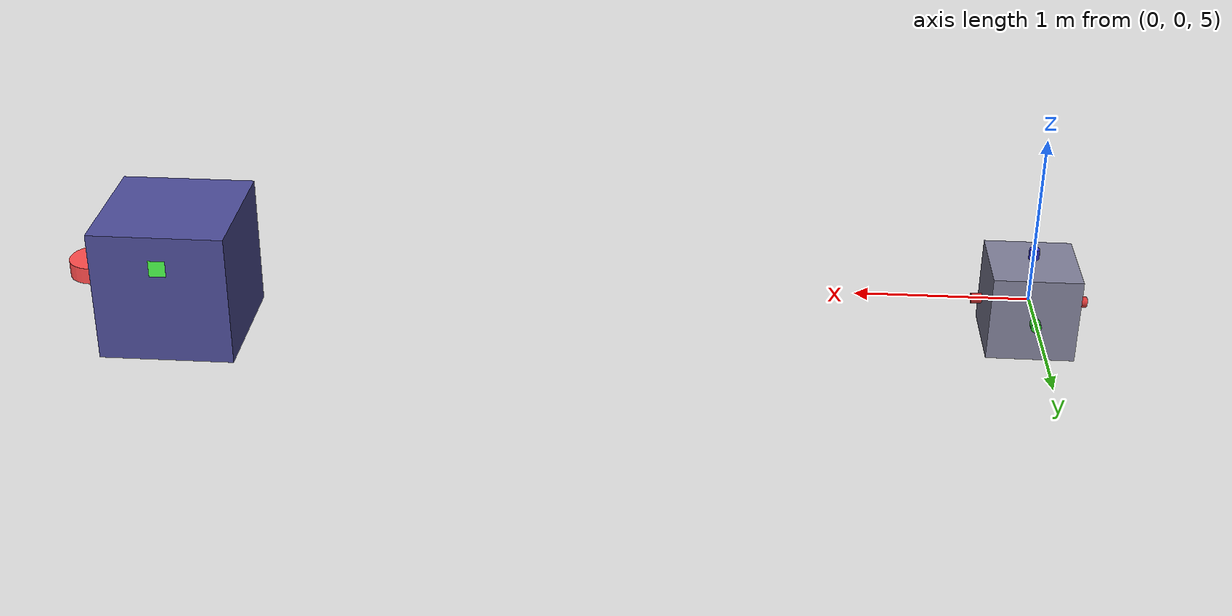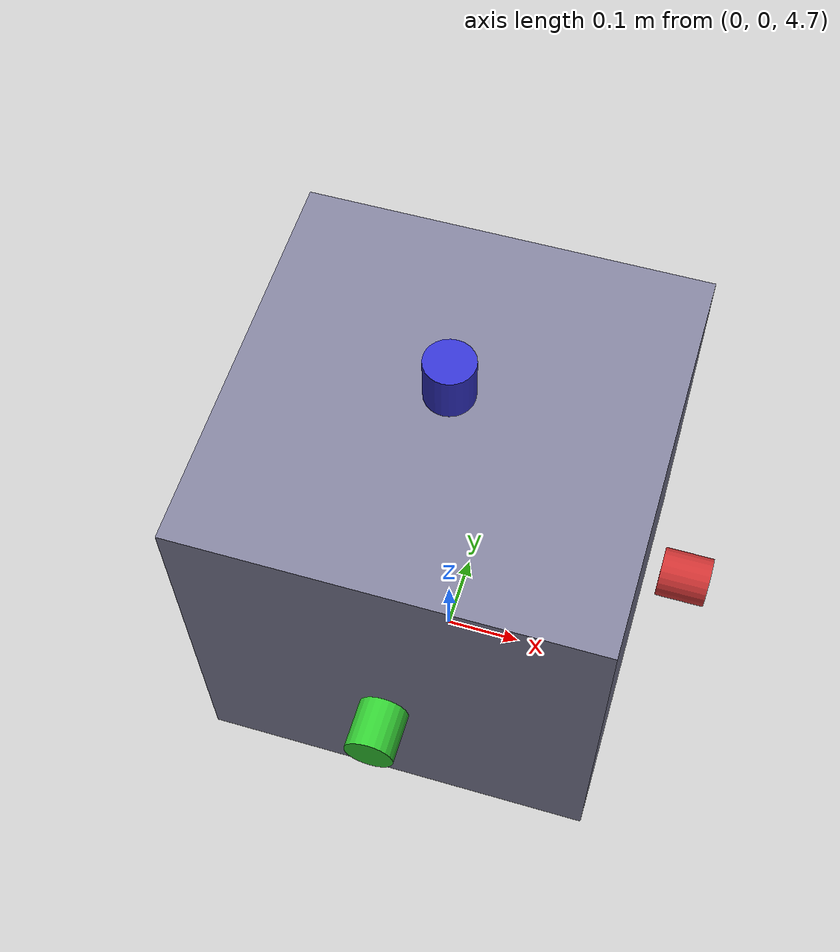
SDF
<?xml version="1.0"?>
<sdf version="1.9">
  <world name="leo_world">
    <!-- Zero gravity for space simulation -->
  <gravity>0 0 0</gravity>

    <atmosphere type="adiabatic"/>
    <wind>
      <linear_velocity>0 0 0</linear_velocity>
    </wind>

    <physics name="default_physics" type="ode">
      <max_step_size>0.001</max_step_size>
      <real_time_factor>1.0</real_time_factor>
      <real_time_update_rate>1000</real_time_update_rate>
      <ode>
        <solver>
          <type>quick</type>
          <iters>50</iters>
          <sor>1.3</sor>
        </solver>
        <constraints>
          <cfm>0.0</cfm>
          <erp>0.2</erp>
          <contact_max_correcting_vel>100.0</contact_max_correcting_vel>
          <contact_surface_layer>0.001</contact_surface_layer>
        </constraints>
      </ode>
    </physics>

    <!-- Dark space-like background -->
    <scene>
      <ambient>0.2 0.2 0.22 1</ambient>
      <background>0.0 0.0 0.0 1</background>
      <shadows>false</shadows>
    </scene>

    <!-- Built-in directional light for visibility (no external model needed) -->
    <light name="key_light" type="directional">
      <cast_shadows>false</cast_shadows>
      <pose>0 0 5 0.5 0 0</pose>
  <diffuse>0.9 0.9 0.95 1</diffuse>
      <specular>0.1 0.1 0.1 1</specular>
      <attenuation>
        <range>100</range>
        <constant>1.0</constant>
        <linear>0.0</linear>
        <quadratic>0.0</quadratic>
      </attenuation>
      <direction>-0.3 -0.2 -1</direction>
    </light>

    <light name="fill_light" type="directional">
      <cast_shadows>false</cast_shadows>
      <pose>0 0 3 0 0 0</pose>
      <diffuse>0.4 0.4 0.45 1</diffuse>
      <specular>0.05 0.05 0.05 1</specular>
      <attenuation>
        <range>100</range>
        <constant>1.0</constant>
        <linear>0.0</linear>
        <quadratic>0.0</quadratic>
      </attenuation>
      <direction>0.3 0.2 -0.6</direction>
    </light>

    <light name="point_glow" type="point">
      <cast_shadows>false</cast_shadows>
      <pose>0 0 1.2 0 0 0</pose>
      <diffuse>0.3 0.3 0.35 1</diffuse>
      <specular>0.0 0.0 0.0 0</specular>
      <attenuation>
        <range>5</range>
        <constant>0.5</constant>
        <linear>0.1</linear>
        <quadratic>0.02</quadratic>
      </attenuation>
    </light>

    <!-- Add the main satellite (AstroSat) at visible altitude -->
    <include>
      <uri>file:///Users/dganjali/GitHub/JADE-SpaceApps/gazebo/models/satellite</uri>
      <pose>0 0 5 0 0 0</pose> <!-- 5 meters altitude for visibility -->
    </include>

    <!-- Add the target docking station (AstroDock) at slightly different position -->
    <include>
      <uri>file:///Users/dganjali/GitHub/JADE-SpaceApps/gazebo/models/astro_dock</uri>
      <pose>5 0 5 0 0 0</pose> <!-- 5 meters separation -->
    </include>

  </world>
</sdf>

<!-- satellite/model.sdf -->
<sdf version="1.9">
  <model name="training_satellite">
    <pose>0 0 0.5 0 0 0</pose>

  <link name="base_link">
      <inertial>
        <pose>0 0 0 0 0 0</pose>
        <mass>10.0</mass>
        <inertia>
          <ixx>0.25</ixx>
          <ixy>0</ixy>
          <ixz>0</ixz>
          <iyy>0.25</iyy>
          <iyz>0</iyz>
          <izz>0.25</izz>
        </inertia>
      </inertial>

      <collision name="collision">
        <geometry>
          <box>
            <size>0.5 0.5 0.5</size>
          </box>
        </geometry>
        <surface>
          <contact>
            <ode/>
          </contact>
        </surface>
      </collision>

      <visual name="visual">
        <geometry>
          <box>
            <size>0.5 0.5 0.5</size>
          </box>
        </geometry>
        <material>
          <ambient>0.2 0.2 0.25 1</ambient>
          <diffuse>0.5 0.5 0.6 1</diffuse>
          <specular>0.1 0.1 0.1 1</specular>
          <emissive>0.05 0.05 0.06 1</emissive>
        </material>
      </visual>

      <!-- IMU sensor on the body -->
      <sensor name="imu" type="imu">
        <always_on>true</always_on>
        <update_rate>100</update_rate>
        <topic>imu</topic>
        <imu>
          <angular_velocity>
            <x>
              <noise type="gaussian">
                <mean>0</mean>
                <stddev>0.0005</stddev>
              </noise>
            </x>
            <y>
              <noise type="gaussian">
                <mean>0</mean>
                <stddev>0.0005</stddev>
              </noise>
            </y>
            <z>
              <noise type="gaussian">
                <mean>0</mean>
                <stddev>0.0005</stddev>
              </noise>
            </z>
          </angular_velocity>
          <linear_acceleration>
            <x>
              <noise type="gaussian">
                <mean>0</mean>
                <stddev>0.0005</stddev>
              </noise>
            </x>
            <y>
              <noise type="gaussian">
                <mean>0</mean>
                <stddev>0.0005</stddev>
              </noise>
            </y>
            <z>
              <noise type="gaussian">
                <mean>0</mean>
                <stddev>0.0005</stddev>
              </noise>
            </z>
          </linear_acceleration>
        </imu>
      </sensor>
    </link>

    <!-- Thruster frames: 6 axis-aligned (+X, -X, +Y, -Y, +Z, -Z)
         Convention: thrust direction is the +Z axis of each thruster link. -->
    <link name="thruster_px">
      <inertial>
        <mass>0.01</mass>
        <inertia>
          <ixx>1e-5</ixx><ixy>0</ixy><ixz>0</ixz>
          <iyy>1e-5</iyy><iyz>0</iyz>
          <izz>1e-5</izz>
        </inertia>
      </inertial>
      <!-- Rotate so +Z aligns with +X (pitch -90 deg) -->
      <pose>0.3 0 0 0 -1.5708 0</pose>
      <visual name="v">
        <geometry><cylinder><radius>0.03</radius><length>0.06</length></cylinder></geometry>
        <material>
          <diffuse>0.8 0.2 0.2 1</diffuse>
          <emissive>0.05 0.01 0.01 1</emissive>
        </material>
      </visual>
    </link>
    <joint name="thruster_px_joint" type="fixed">
      <parent>base_link</parent>
      <child>thruster_px</child>
    </joint>

    <link name="thruster_nx">
      <inertial>
        <mass>0.01</mass>
        <inertia>
          <ixx>1e-5</ixx><ixy>0</ixy><ixz>0</ixz>
          <iyy>1e-5</iyy><iyz>0</iyz>
          <izz>1e-5</izz>
        </inertia>
      </inertial>
      <!-- Rotate so +Z aligns with -X (pitch +90 deg) -->
      <pose>-0.3 0 0 0 1.5708 0</pose>
      <visual name="v">
        <geometry><cylinder><radius>0.03</radius><length>0.06</length></cylinder></geometry>
        <material>
          <diffuse>0.8 0.2 0.2 1</diffuse>
          <emissive>0.05 0.01 0.01 1</emissive>
        </material>
      </visual>
    </link>
    <joint name="thruster_nx_joint" type="fixed">
      <parent>base_link</parent>
      <child>thruster_nx</child>
    </joint>

    <link name="thruster_py">
      <inertial>
        <mass>0.01</mass>
        <inertia>
          <ixx>1e-5</ixx><ixy>0</ixy><ixz>0</ixz>
          <iyy>1e-5</iyy><iyz>0</iyz>
          <izz>1e-5</izz>
        </inertia>
      </inertial>
      <!-- Rotate so +Z aligns with +Y (roll +90 deg) -->
      <pose>0 0.3 0 1.5708 0 0</pose>
      <visual name="v">
        <geometry><cylinder><radius>0.03</radius><length>0.06</length></cylinder></geometry>
        <material>
          <diffuse>0.2 0.8 0.2 1</diffuse>
          <emissive>0.01 0.05 0.01 1</emissive>
        </material>
      </visual>
    </link>
    <joint name="thruster_py_joint" type="fixed">
      <parent>base_link</parent>
      <child>thruster_py</child>
    </joint>

    <link name="thruster_ny">
      <inertial>
        <mass>0.01</mass>
        <inertia>
          <ixx>1e-5</ixx><ixy>0</ixy><ixz>0</ixz>
          <iyy>1e-5</iyy><iyz>0</iyz>
          <izz>1e-5</izz>
        </inertia>
      </inertial>
      <!-- Rotate so +Z aligns with -Y (roll -90 deg) -->
      <pose>0 -0.3 0 -1.5708 0 0</pose>
      <visual name="v">
        <geometry><cylinder><radius>0.03</radius><length>0.06</length></cylinder></geometry>
        <material>
          <diffuse>0.2 0.8 0.2 1</diffuse>
          <emissive>0.01 0.05 0.01 1</emissive>
        </material>
      </visual>
    </link>
    <joint name="thruster_ny_joint" type="fixed">
      <parent>base_link</parent>
      <child>thruster_ny</child>
    </joint>

    <link name="thruster_pz">
      <inertial>
        <mass>0.01</mass>
        <inertia>
          <ixx>1e-5</ixx><ixy>0</ixy><ixz>0</ixz>
          <iyy>1e-5</iyy><iyz>0</iyz>
          <izz>1e-5</izz>
        </inertia>
      </inertial>
      <!-- +Z already aligns with +Z (no rotation) -->
      <pose>0 0 0.3 0 0 0</pose>
      <visual name="v">
        <geometry><cylinder><radius>0.03</radius><length>0.06</length></cylinder></geometry>
        <material>
          <diffuse>0.2 0.2 0.8 1</diffuse>
          <emissive>0.01 0.01 0.05 1</emissive>
        </material>
      </visual>
    </link>
    <joint name="thruster_pz_joint" type="fixed">
      <parent>base_link</parent>
      <child>thruster_pz</child>
    </joint>

    <link name="thruster_nz">
      <inertial>
        <mass>0.01</mass>
        <inertia>
          <ixx>1e-5</ixx><ixy>0</ixy><ixz>0</ixz>
          <iyy>1e-5</iyy><iyz>0</iyz>
          <izz>1e-5</izz>
        </inertia>
      </inertial>
      <!-- Rotate so +Z aligns with -Z (roll 180 deg) -->
      <pose>0 0 -0.3 3.14159 0 0</pose>
      <visual name="v">
        <geometry><cylinder><radius>0.03</radius><length>0.06</length></cylinder></geometry>
        <material>
          <diffuse>0.2 0.2 0.8 1</diffuse>
          <emissive>0.01 0.01 0.05 1</emissive>
        </material>
      </visual>
    </link>
    <joint name="thruster_nz_joint" type="fixed">
      <parent>base_link</parent>
      <child>thruster_nz</child>
    </joint>

    <allow_auto_disable>false</allow_auto_disable>
    <static>false</static>

  </model>
</sdf>

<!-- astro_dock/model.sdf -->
<sdf version="1.9">
  <model name="astro_dock">
    <pose>5 0 0 0 0 0</pose> <!-- Positioned 5m away from origin -->

    <!-- Main dock body -->
    <link name="dock_body">
      <inertial>
        <pose>0 0 0 0 0 0</pose>
        <mass>15.0</mass>
        <inertia>
          <ixx>0.5</ixx>
          <ixy>0</ixy>
          <ixz>0</ixz>
          <iyy>0.5</iyy>
          <iyz>0</iyz>
          <izz>0.5</izz>
        </inertia>
      </inertial>

      <collision name="collision">
        <geometry>
          <box>
            <size>0.8 0.8 0.8</size>
          </box>
        </geometry>
        <surface>
          <contact>
            <ode/>
          </contact>
        </surface>
      </collision>

      <visual name="visual">
        <geometry>
          <box>
            <size>0.8 0.8 0.8</size>
          </box>
        </geometry>
        <material>
          <ambient>0.1 0.1 0.2 1</ambient>
          <diffuse>0.3 0.3 0.6 1</diffuse>
          <specular>0.1 0.1 0.1 1</specular>
          <emissive>0.05 0.05 0.1 1</emissive>
        </material>
      </visual>
    </link>

    <!-- Docking port - visual target for the main satellite -->
    <link name="docking_port">
      <inertial>
        <mass>0.1</mass>
        <inertia>
          <ixx>0.001</ixx><ixy>0</ixy><ixz>0</ixz>
          <iyy>0.001</iyy><iyz>0</iyz>
          <izz>0.001</izz>
        </inertia>
      </inertial>
      <pose>0.5 0 0 0 0 0</pose> <!-- Extended from dock body -->
      <visual name="port_visual">
        <geometry>
          <cylinder>
            <radius>0.15</radius>
            <length>0.1</length>
          </cylinder>
        </geometry>
        <material>
          <ambient>0.8 0.2 0.2 1</ambient>
          <diffuse>1.0 0.3 0.3 1</diffuse>
          <specular>0.1 0.1 0.1 1</specular>
          <emissive>0.1 0.02 0.02 1</emissive>
        </material>
      </visual>
    </link>
    <joint name="docking_port_joint" type="fixed">
      <parent>dock_body</parent>
      <child>docking_port</child>
    </joint>

    <!-- Battery slot 1 -->
    <link name="battery_slot_1">
      <inertial>
        <mass>0.5</mass>
        <inertia>
          <ixx>0.01</ixx><ixy>0</ixy><ixz>0</ixz>
          <iyy>0.01</iyy><iyz>0</iyz>
          <izz>0.01</izz>
        </inertia>
      </inertial>
      <pose>0 0.3 0.2 0 0 0</pose>
      <visual name="battery_1_visual">
        <geometry>
          <box>
            <size>0.1 0.2 0.1</size>
          </box>
        </geometry>
        <material>
          <ambient>0.2 0.8 0.2 1</ambient>
          <diffuse>0.3 1.0 0.3 1</diffuse>
          <specular>0.1 0.1 0.1 1</specular>
          <emissive>0.02 0.08 0.02 1</emissive>
        </material>
      </visual>
    </link>
    <joint name="battery_slot_1_joint" type="fixed">
      <parent>dock_body</parent>
      <child>battery_slot_1</child>
    </joint>

    <!-- Battery slot 2 -->
    <link name="battery_slot_2">
      <inertial>
        <mass>0.5</mass>
        <inertia>
          <ixx>0.01</ixx><ixy>0</ixy><ixz>0</ixz>
          <iyy>0.01</iyy><iyz>0</iyz>
          <izz>0.01</izz>
        </inertia>
      </inertial>
      <pose>0 -0.3 0.2 0 0 0</pose>
      <visual name="battery_2_visual">
        <geometry>
          <box>
            <size>0.1 0.2 0.1</size>
          </box>
        </geometry>
        <material>
          <ambient>0.2 0.8 0.2 1</ambient>
          <diffuse>0.3 1.0 0.3 1</diffuse>
          <specular>0.1 0.1 0.1 1</specular>
          <emissive>0.02 0.08 0.02 1</emissive>
        </material>
      </visual>
    </link>
    <joint name="battery_slot_2_joint" type="fixed">
      <parent>dock_body</parent>
      <child>battery_slot_2</child>
    </joint>

    <allow_auto_disable>false</allow_auto_disable>
    <static>true</static> <!-- Target is stationary -->
  </model>
</sdf>
